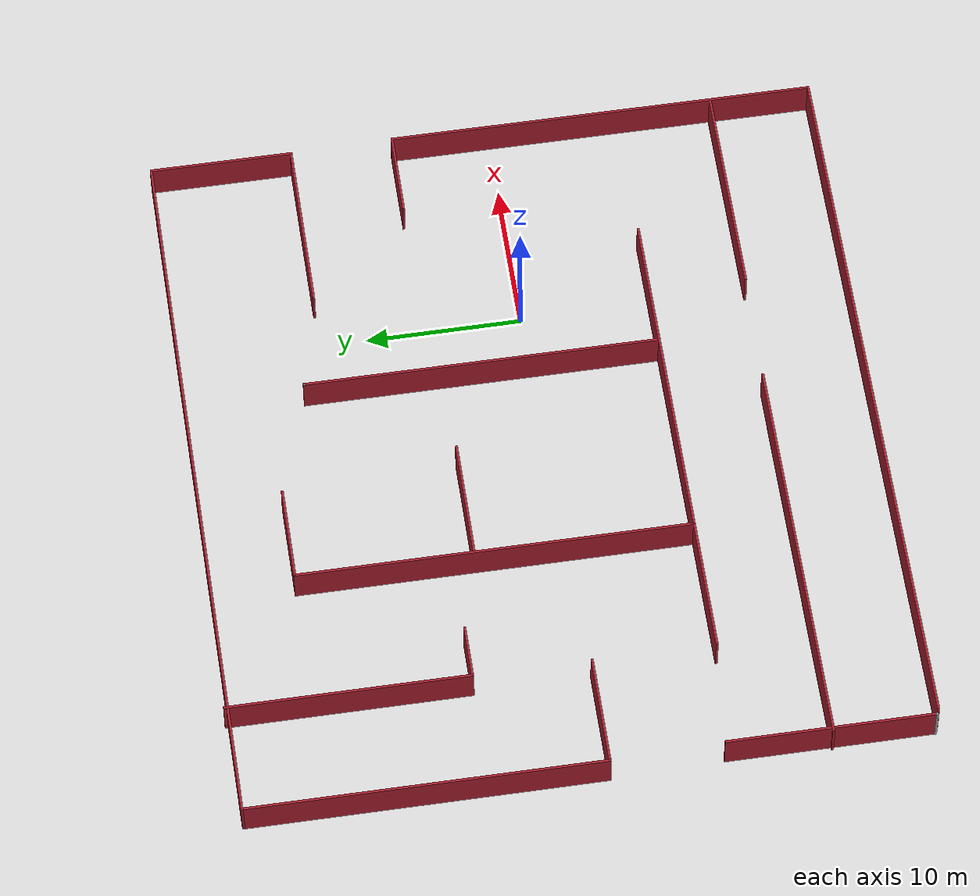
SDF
<?xml version='1.0'?>
<sdf version='1.7'>
  <model name='Maze1'>
    <pose>-10.0665 0.685737 0 0 -0 0</pose>
    <link name='Wall_0'>
      <collision name='Wall_0_Collision'>
        <geometry>
          <box>
            <size>46.75 0.15 2.5</size>
          </box>
        </geometry>
        <pose>0 0 1.25 0 -0 0</pose>
      </collision>
      <visual name='Wall_0_Visual'>
        <pose>0 0 1.25 0 -0 0</pose>
        <geometry>
          <box>
            <size>46.75 0.15 2.5</size>
          </box>
        </geometry>
        <material>
          <script>
            <uri>file://media/materials/scripts/gazebo.material</uri>
            <name>Gazebo/Grey</name>
          </script>
          <ambient>0.647059 0.113725 0.176471 1</ambient>
        </material>
        <meta>
          <layer>0</layer>
        </meta>
      </visual>
      <pose>0.322621 -21.6194 0 0 -0 0</pose>
    </link>
    <link name='Wall_1'>
      <collision name='Wall_1_Collision'>
        <geometry>
          <box>
            <size>27.5 0.15 2.5</size>
          </box>
        </geometry>
        <pose>0 0 1.25 0 -0 0</pose>
      </collision>
      <visual name='Wall_1_Visual'>
        <pose>0 0 1.25 0 -0 0</pose>
        <geometry>
          <box>
            <size>27.5 0.15 2.5</size>
          </box>
        </geometry>
        <material>
          <script>
            <uri>file://media/materials/scripts/gazebo.material</uri>
            <name>Gazebo/Grey</name>
          </script>
          <ambient>0.647059 0.113725 0.176471 1</ambient>
        </material>
        <meta>
          <layer>0</layer>
        </meta>
      </visual>
      <pose>23.6226 -7.9444 0 0 -0 1.5708</pose>
    </link>
    <link name='Wall_11'>
      <collision name='Wall_11_Collision'>
        <geometry>
          <box>
            <size>31 0.15 2.5</size>
          </box>
        </geometry>
        <pose>0 0 1.25 0 -0 0</pose>
      </collision>
      <visual name='Wall_11_Visual'>
        <pose>0 0 1.25 0 -0 0</pose>
        <geometry>
          <box>
            <size>31 0.15 2.5</size>
          </box>
        </geometry>
        <material>
          <script>
            <uri>file://media/materials/scripts/gazebo.material</uri>
            <name>Gazebo/Grey</name>
          </script>
          <ambient>0.647059 0.113725 0.176471 1</ambient>
        </material>
        <meta>
          <layer>0</layer>
        </meta>
      </visual>
      <pose>-1.07034 -8.94797 0 0 -0 0</pose>
    </link>
    <link name='Wall_13'>
      <collision name='Wall_13_Collision'>
        <geometry>
          <box>
            <size>22.75 0.15 2.5</size>
          </box>
        </geometry>
        <pose>0 0 1.25 0 -0 0</pose>
      </collision>
      <visual name='Wall_13_Visual'>
        <pose>0 0 1.25 0 -0 0</pose>
        <geometry>
          <box>
            <size>22.75 0.15 2.5</size>
          </box>
        </geometry>
        <material>
          <script>
            <uri>file://media/materials/scripts/gazebo.material</uri>
            <name>Gazebo/Grey</name>
          </script>
          <ambient>0.647059 0.113725 0.176471 1</ambient>
        </material>
        <meta>
          <layer>0</layer>
        </meta>
      </visual>
      <pose>5.90423 2.47579 0 0 -0 1.5708</pose>
    </link>
    <link name='Wall_14'>
      <collision name='Wall_14_Collision'>
        <geometry>
          <box>
            <size>0.16 0.15 2.5</size>
          </box>
        </geometry>
        <pose>0 0 1.25 0 -0 0</pose>
      </collision>
      <visual name='Wall_14_Visual'>
        <pose>0 0 1.25 0 -0 0</pose>
        <geometry>
          <box>
            <size>0.16 0.15 2.5</size>
          </box>
        </geometry>
        <material>
          <script>
            <uri>file://media/materials/scripts/gazebo.material</uri>
            <name>Gazebo/Grey</name>
          </script>
          <ambient>1 1 1 1</ambient>
        </material>
        <meta>
          <layer>0</layer>
        </meta>
      </visual>
      <pose>5.90923 13.7758 0 0 -0 0</pose>
    </link>
    <link name='Wall_16'>
      <collision name='Wall_16_Collision'>
        <geometry>
          <box>
            <size>9.25 0.15 2.5</size>
          </box>
        </geometry>
        <pose>0 0 1.25 0 -0 0</pose>
      </collision>
      <visual name='Wall_16_Visual'>
        <pose>0 0 1.25 0 -0 0</pose>
        <geometry>
          <box>
            <size>9.25 0.15 2.5</size>
          </box>
        </geometry>
        <material>
          <script>
            <uri>file://media/materials/scripts/gazebo.material</uri>
            <name>Gazebo/Grey</name>
          </script>
          <ambient>0.647059 0.113725 0.176471 1</ambient>
        </material>
        <meta>
          <layer>0</layer>
        </meta>
      </visual>
      <pose>23.4774 16.8878 0 0 -0 1.5708</pose>
    </link>
    <link name='Wall_17'>
      <collision name='Wall_17_Collision'>
        <geometry>
          <box>
            <size>47.25 0.15 2.5</size>
          </box>
        </geometry>
        <pose>0 0 1.25 0 -0 0</pose>
      </collision>
      <visual name='Wall_17_Visual'>
        <pose>0 0 1.25 0 -0 0</pose>
        <geometry>
          <box>
            <size>47.25 0.15 2.5</size>
          </box>
        </geometry>
        <material>
          <script>
            <uri>file://media/materials/scripts/gazebo.material</uri>
            <name>Gazebo/Grey</name>
          </script>
          <ambient>0.647059 0.113725 0.176471 1</ambient>
        </material>
        <meta>
          <layer>0</layer>
        </meta>
      </visual>
      <pose>-0.07262 21.4378 0 0 -0 3.14159</pose>
    </link>
    <link name='Wall_18'>
      <collision name='Wall_18_Collision'>
        <geometry>
          <box>
            <size>22.75 0.15 2.5</size>
          </box>
        </geometry>
        <pose>0 0 1.25 0 -0 0</pose>
      </collision>
      <visual name='Wall_18_Visual'>
        <pose>0 0 1.25 0 -0 0</pose>
        <geometry>
          <box>
            <size>22.75 0.15 2.5</size>
          </box>
        </geometry>
        <material>
          <script>
            <uri>file://media/materials/scripts/gazebo.material</uri>
            <name>Gazebo/Grey</name>
          </script>
          <ambient>0.647059 0.113725 0.176471 1</ambient>
        </material>
        <meta>
          <layer>0</layer>
        </meta>
      </visual>
      <pose>-23.6226 10.1378 0 0 -0 -1.5708</pose>
    </link>
    <link name='Wall_19'>
      <collision name='Wall_19_Collision'>
        <geometry>
          <box>
            <size>7.25 0.15 2.5</size>
          </box>
        </geometry>
        <pose>0 0 1.25 0 -0 0</pose>
      </collision>
      <visual name='Wall_19_Visual'>
        <pose>0 0 1.25 0 -0 0</pose>
        <geometry>
          <box>
            <size>7.25 0.15 2.5</size>
          </box>
        </geometry>
        <material>
          <script>
            <uri>file://media/materials/scripts/gazebo.material</uri>
            <name>Gazebo/Grey</name>
          </script>
          <ambient>0.647059 0.113725 0.176471 1</ambient>
        </material>
        <meta>
          <layer>0</layer>
        </meta>
      </visual>
      <pose>-20.0726 -1.16219 0 0 -0 0</pose>
    </link>
    <link name='Wall_2'>
      <collision name='Wall_2_Collision'>
        <geometry>
          <box>
            <size>5.5 0.15 2.5</size>
          </box>
        </geometry>
        <pose>0 0 1.25 0 -0 0</pose>
      </collision>
      <visual name='Wall_2_Visual'>
        <pose>0 0 1.25 0 -0 0</pose>
        <geometry>
          <box>
            <size>5.5 0.15 2.5</size>
          </box>
        </geometry>
        <material>
          <script>
            <uri>file://media/materials/scripts/gazebo.material</uri>
            <name>Gazebo/Grey</name>
          </script>
          <ambient>0.647059 0.113725 0.176471 1</ambient>
        </material>
        <meta>
          <layer>0</layer>
        </meta>
      </visual>
      <pose>20.9476 5.7306 0 0 -0 3.14159</pose>
    </link>
    <link name='Wall_22'>
      <collision name='Wall_22_Collision'>
        <geometry>
          <box>
            <size>25.25 0.15 2.5</size>
          </box>
        </geometry>
        <pose>0 0 1.25 0 -0 0</pose>
      </collision>
      <visual name='Wall_22_Visual'>
        <pose>0 0 1.25 0 -0 0</pose>
        <geometry>
          <box>
            <size>25.25 0.15 2.5</size>
          </box>
        </geometry>
        <material>
          <script>
            <uri>file://media/materials/scripts/gazebo.material</uri>
            <name>Gazebo/Grey</name>
          </script>
          <ambient>0.647059 0.113725 0.176471 1</ambient>
        </material>
        <meta>
          <layer>0</layer>
        </meta>
      </visual>
      <pose>-7.83252 3.60203 0 0 -0 1.5708</pose>
    </link>
    <link name='Wall_23'>
      <collision name='Wall_23_Collision'>
        <geometry>
          <box>
            <size>6.25 0.15 2.5</size>
          </box>
        </geometry>
        <pose>0 0 1.25 0 -0 0</pose>
      </collision>
      <visual name='Wall_23_Visual'>
        <pose>0 0 1.25 0 -0 0</pose>
        <geometry>
          <box>
            <size>6.25 0.15 2.5</size>
          </box>
        </geometry>
        <material>
          <script>
            <uri>file://media/materials/scripts/gazebo.material</uri>
            <name>Gazebo/Grey</name>
          </script>
          <ambient>0.647059 0.113725 0.176471 1</ambient>
        </material>
        <meta>
          <layer>0</layer>
        </meta>
      </visual>
      <pose>-4.78252 16.152 0 0 -0 0</pose>
    </link>
    <link name='Wall_25'>
      <collision name='Wall_25_Collision'>
        <geometry>
          <box>
            <size>15.5 0.15 2.5</size>
          </box>
        </geometry>
        <pose>0 0 1.25 0 -0 0</pose>
      </collision>
      <visual name='Wall_25_Visual'>
        <pose>0 0 1.25 0 -0 0</pose>
        <geometry>
          <box>
            <size>15.5 0.15 2.5</size>
          </box>
        </geometry>
        <material>
          <script>
            <uri>file://media/materials/scripts/gazebo.material</uri>
            <name>Gazebo/Grey</name>
          </script>
          <ambient>0.647059 0.113725 0.176471 1</ambient>
        </material>
        <meta>
          <layer>0</layer>
        </meta>
      </visual>
      <pose>-16.4953 13.9444 0 0 -0 -1.5708</pose>
    </link>
    <link name='Wall_26'>
      <collision name='Wall_26_Collision'>
        <geometry>
          <box>
            <size>3.5 0.15 2.5</size>
          </box>
        </geometry>
        <pose>0 0 1.25 0 -0 0</pose>
      </collision>
      <visual name='Wall_26_Visual'>
        <pose>0 0 1.25 0 -0 0</pose>
        <geometry>
          <box>
            <size>3.5 0.15 2.5</size>
          </box>
        </geometry>
        <material>
          <script>
            <uri>file://media/materials/scripts/gazebo.material</uri>
            <name>Gazebo/Grey</name>
          </script>
          <ambient>0.647059 0.113725 0.176471 1</ambient>
        </material>
        <meta>
          <layer>0</layer>
        </meta>
      </visual>
      <pose>-14.8203 6.2694 0 0 -0 0</pose>
    </link>
    <link name='Wall_28'>
      <collision name='Wall_28_Collision'>
        <geometry>
          <box>
            <size>7.75 0.15 2.5</size>
          </box>
        </geometry>
        <pose>0 0 1.25 0 -0 0</pose>
      </collision>
      <visual name='Wall_28_Visual'>
        <pose>0 0 1.25 0 -0 0</pose>
        <geometry>
          <box>
            <size>7.75 0.15 2.5</size>
          </box>
        </geometry>
        <material>
          <script>
            <uri>file://media/materials/scripts/gazebo.material</uri>
            <name>Gazebo/Grey</name>
          </script>
          <ambient>0.647059 0.113725 0.176471 1</ambient>
        </material>
        <meta>
          <layer>0</layer>
        </meta>
      </visual>
      <pose>-3.90876 4.91254 0 0 -0 0</pose>
    </link>
    <link name='Wall_30'>
      <collision name='Wall_30_Collision'>
        <geometry>
          <box>
            <size>11.25 0.15 2.5</size>
          </box>
        </geometry>
        <pose>0 0 1.25 0 -0 0</pose>
      </collision>
      <visual name='Wall_30_Visual'>
        <pose>0 0 1.25 0 -0 0</pose>
        <geometry>
          <box>
            <size>11.25 0.15 2.5</size>
          </box>
        </geometry>
        <material>
          <script>
            <uri>file://media/materials/scripts/gazebo.material</uri>
            <name>Gazebo/Grey</name>
          </script>
          <ambient>0.647059 0.113725 0.176471 1</ambient>
        </material>
        <meta>
          <layer>0</layer>
        </meta>
      </visual>
      <pose>17.9274 12.3378 0 0 -0 3.14159</pose>
    </link>
    <link name='Wall_4'>
      <collision name='Wall_4_Collision'>
        <geometry>
          <box>
            <size>0.16 0.15 2.5</size>
          </box>
        </geometry>
        <pose>0 0 1.25 0 -0 0</pose>
      </collision>
      <visual name='Wall_4_Visual'>
        <pose>0 0 1.25 0 -0 0</pose>
        <geometry>
          <box>
            <size>0.16 0.15 2.5</size>
          </box>
        </geometry>
        <material>
          <script>
            <uri>file://media/materials/scripts/gazebo.material</uri>
            <name>Gazebo/Grey</name>
          </script>
          <ambient>1 1 1 1</ambient>
        </material>
        <meta>
          <layer>0</layer>
        </meta>
      </visual>
      <pose>-23.3993 -21.4771 0 0 -0 0</pose>
    </link>
    <link name='Wall_5'>
      <collision name='Wall_5_Collision'>
        <geometry>
          <box>
            <size>13.25 0.15 2.5</size>
          </box>
        </geometry>
        <pose>0 0 1.25 0 -0 0</pose>
      </collision>
      <visual name='Wall_5_Visual'>
        <pose>0 0 1.25 0 -0 0</pose>
        <geometry>
          <box>
            <size>13.25 0.15 2.5</size>
          </box>
        </geometry>
        <material>
          <script>
            <uri>file://media/materials/scripts/gazebo.material</uri>
            <name>Gazebo/Grey</name>
          </script>
          <ambient>0.647059 0.113725 0.176471 1</ambient>
        </material>
        <meta>
          <layer>0</layer>
        </meta>
      </visual>
      <pose>-23.3943 -14.9271 0 0 -0 1.5708</pose>
    </link>
    <link name='Wall_7'>
      <collision name='Wall_7_Collision'>
        <geometry>
          <box>
            <size>26 0.15 2.5</size>
          </box>
        </geometry>
        <pose>0 0 1.25 0 -0 0</pose>
      </collision>
      <visual name='Wall_7_Visual'>
        <pose>0 0 1.25 0 -0 0</pose>
        <geometry>
          <box>
            <size>26 0.15 2.5</size>
          </box>
        </geometry>
        <material>
          <script>
            <uri>file://media/materials/scripts/gazebo.material</uri>
            <name>Gazebo/Grey</name>
          </script>
          <ambient>0.647059 0.113725 0.176471 1</ambient>
        </material>
        <meta>
          <layer>0</layer>
        </meta>
      </visual>
      <pose>-10.6243 -15.0119 0 0 -0 0</pose>
    </link>
    <link name='Wall_9'>
      <collision name='Wall_9_Collision'>
        <geometry>
          <box>
            <size>14 0.15 2.5</size>
          </box>
        </geometry>
        <pose>0 0 1.25 0 -0 0</pose>
      </collision>
      <visual name='Wall_9_Visual'>
        <pose>0 0 1.25 0 -0 0</pose>
        <geometry>
          <box>
            <size>14 0.15 2.5</size>
          </box>
        </geometry>
        <material>
          <script>
            <uri>file://media/materials/scripts/gazebo.material</uri>
            <name>Gazebo/Grey</name>
          </script>
          <ambient>0.647059 0.113725 0.176471 1</ambient>
        </material>
        <meta>
          <layer>0</layer>
        </meta>
      </visual>
      <pose>16.5419 -15.1357 0 0 -0 0</pose>
    </link>
    <static>1</static>
  </model>
</sdf>
